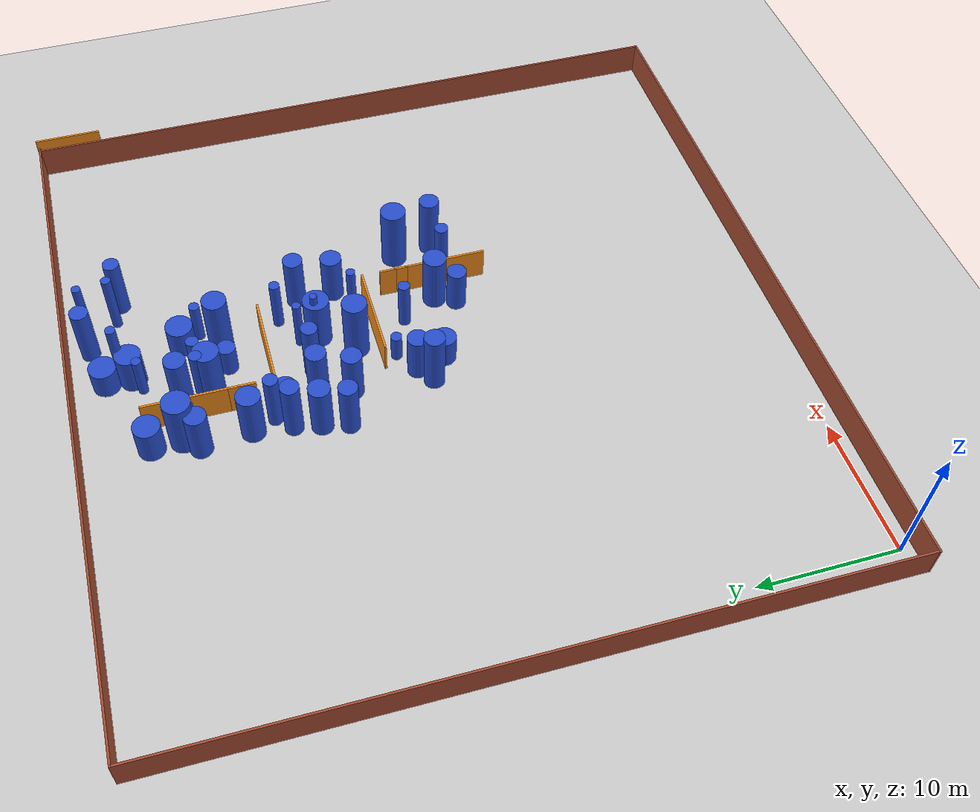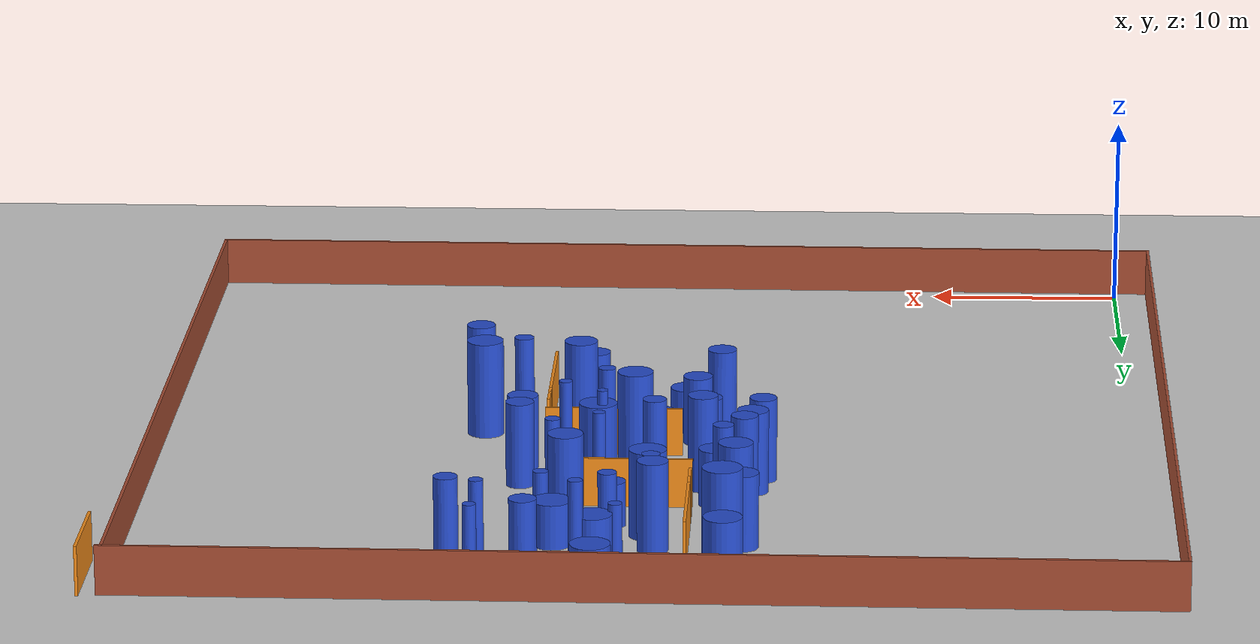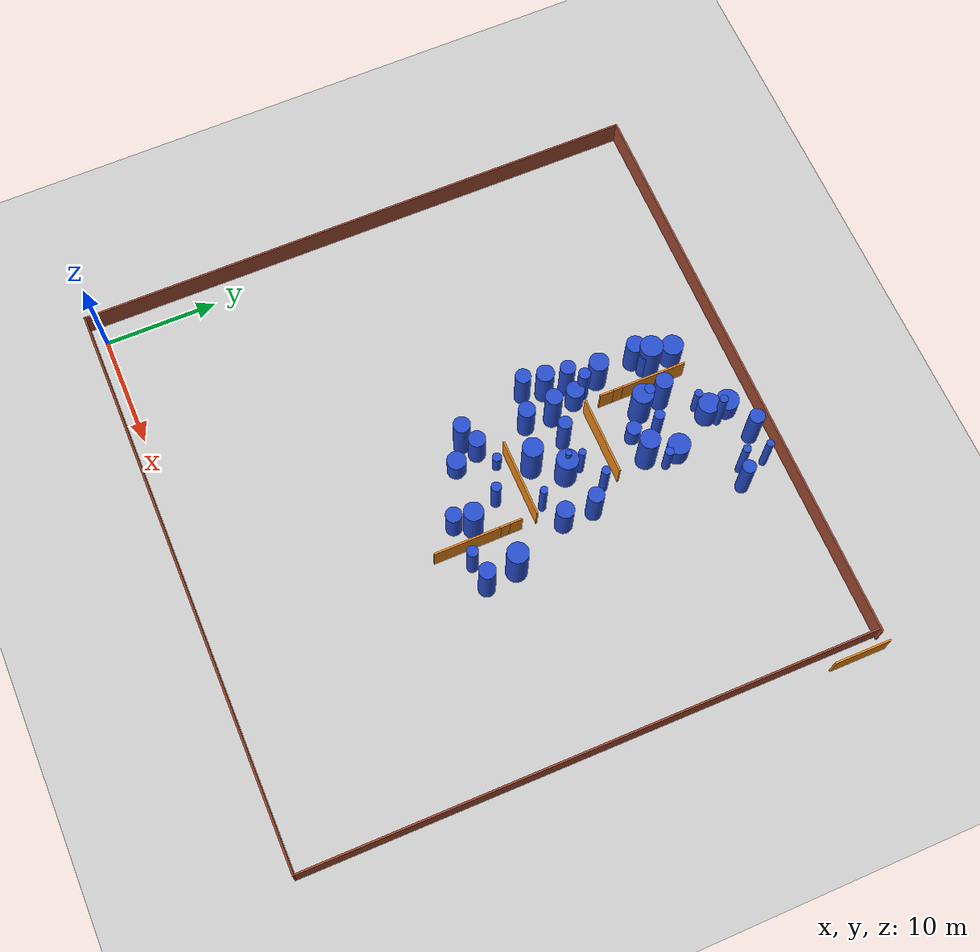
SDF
<sdf version="1.6">
 <world name="default">
  <model name="ground_plane">
   <static>1</static>
   <link name="link">
    <collision name="collision">
     <geometry><plane><normal>0 0 1</normal><size>100 100</size></plane></geometry>
     <surface><friction><ode><mu>100</mu><mu2>50</mu2></ode></friction></surface>
    </collision>
    <visual name="visual">
     <cast_shadows>0</cast_shadows>
     <geometry><plane><normal>0 0 1</normal><size>100 100</size></plane></geometry>
     <material>
      <script><uri>file://media/materials/scripts/gazebo.material</uri><name>Gazebo/Grey</name></script>
     </material>
    </visual>
   </link>
  </model>
  <model name="1">
   <static>0</static>
   <link name="link">
    <inertial>
     <mass>2</mass>
     <inertia><ixx>3.78778</ixx><ixy>0</ixy><ixz>0</ixz><iyy>3.78778</iyy><iyz>0</iyz><izz>0.35692</izz></inertia>
    </inertial>
    <collision name="collision">
     <geometry><cylinder><length>4.65359</length><radius>0.597428</radius></cylinder></geometry>
     <surface><contact><collide_without_contact>1</collide_without_contact></contact></surface>
    </collision>
    <visual name="visual">
     <geometry><cylinder><length>4.65359</length><radius>0.597428</radius></cylinder></geometry>
     <material>
      <script><uri>file://media/materials/scripts/gazebo.material</uri><name>Gazebo/Blue</name></script>
     </material>
    </visual>
    <gravity>0</gravity>
   </link>
   <pose>24.2609 32.8057 2.3268 0 -0 0</pose>
  </model>
  <model name="11">
   <static>0</static>
   <link name="link">
    <inertial>
     <mass>2</mass>
     <inertia><ixx>1.8509</ixx><ixy>0</ixy><ixz>0</ixz><iyy>1.8509</iyy><iyz>0</iyz><izz>0.122377</izz></inertia>
    </inertial>
    <collision name="collision">
     <geometry><cylinder><length>3.27693</length><radius>0.349825</radius></cylinder></geometry>
     <surface><contact><collide_without_contact>1</collide_without_contact></contact></surface>
    </collision>
    <visual name="visual">
     <geometry><cylinder><length>3.27693</length><radius>0.349825</radius></cylinder></geometry>
     <material>
      <script><uri>file://media/materials/scripts/gazebo.material</uri><name>Gazebo/Blue</name></script>
     </material>
    </visual>
    <gravity>0</gravity>
   </link>
   <pose>25.7147 44.6037 1.63846 0 -0 0</pose>
  </model>
  <model name="12">
   <static>0</static>
   <link name="link">
    <inertial>
     <mass>2</mass>
     <inertia><ixx>2.16856</ixx><ixy>0</ixy><ixz>0</ixz><iyy>2.16856</iyy><iyz>0</iyz><izz>0.502649</izz></inertia>
    </inertial>
    <collision name="collision">
     <geometry><cylinder><length>3.39167</length><radius>0.708978</radius></cylinder></geometry>
     <surface><contact><collide_without_contact>1</collide_without_contact></contact></surface>
    </collision>
    <visual name="visual">
     <geometry><cylinder><length>3.39167</length><radius>0.708978</radius></cylinder></geometry>
     <material>
      <script><uri>file://media/materials/scripts/gazebo.material</uri><name>Gazebo/Blue</name></script>
     </material>
    </visual>
    <gravity>0</gravity>
   </link>
   <pose>27.6973 21.2651 1.69583 0 -0 0</pose>
  </model>
  <model name="14">
   <static>0</static>
   <link name="link">
    <inertial>
     <mass>2</mass>
     <inertia><ixx>3.82852</ixx><ixy>0</ixy><ixz>0</ixz><iyy>3.82852</iyy><iyz>0</iyz><izz>0.125875</izz></inertia>
    </inertial>
    <collision name="collision">
     <geometry><cylinder><length>4.75326</length><radius>0.354788</radius></cylinder></geometry>
     <surface><contact><collide_without_contact>1</collide_without_contact></contact></surface>
    </collision>
    <visual name="visual">
     <geometry><cylinder><length>4.75326</length><radius>0.354788</radius></cylinder></geometry>
     <material>
      <script><uri>file://media/materials/scripts/gazebo.material</uri><name>Gazebo/Blue</name></script>
     </material>
    </visual>
    <gravity>0</gravity>
   </link>
   <pose>32.3125 45.6475 2.37663 0 -0 0</pose>
  </model>
  <model name="18">
   <static>0</static>
   <link name="link">
    <inertial>
     <mass>2</mass>
     <inertia>
      <ixx>0.856917</ixx>
      <ixy>0</ixy>
      <ixz>0</ixz>
      <iyy>0.856917</iyy>
      <iyz>0</iyz>
      <izz>0.164802</izz>
     </inertia>
    </inertial>
    <collision name="collision">
     <geometry><cylinder><length>2.15571</length><radius>0.405958</radius></cylinder></geometry>
     <surface><contact><collide_without_contact>1</collide_without_contact></contact></surface>
    </collision>
    <visual name="visual">
     <geometry><cylinder><length>2.15571</length><radius>0.405958</radius></cylinder></geometry>
     <material>
      <script><uri>file://media/materials/scripts/gazebo.material</uri><name>Gazebo/Blue</name></script>
     </material>
    </visual>
    <gravity>0</gravity>
   </link>
   <pose>23.9671 26.7785 1.07786 0 -0 0</pose>
  </model>
  <model name="35">
   <static>0</static>
   <link name="link">
    <inertial>
     <mass>2</mass>
     <inertia><ixx>3.99285</ixx><ixy>0</ixy><ixz>0</ixz><iyy>3.99285</iyy><iyz>0</iyz><izz>0.131146</izz></inertia>
    </inertial>
    <collision name="collision">
     <geometry><cylinder><length>4.85424</length><radius>0.36214</radius></cylinder></geometry>
     <surface><contact><collide_without_contact>1</collide_without_contact></contact></surface>
    </collision>
    <visual name="visual">
     <geometry><cylinder><length>4.85424</length><radius>0.36214</radius></cylinder></geometry>
     <material>
      <script><uri>file://media/materials/scripts/gazebo.material</uri><name>Gazebo/Blue</name></script>
     </material>
    </visual>
    <gravity>0</gravity>
   </link>
   <pose>27.5562 45.8459 2.42712 0 -0 0</pose>
  </model>
  <model name="39">
   <static>0</static>
   <link name="link">
    <inertial>
     <mass>2</mass>
     <inertia><ixx>1.87707</ixx><ixy>0</ixy><ixz>0</ixz><iyy>1.87707</iyy><iyz>0</iyz><izz>0.143575</izz></inertia>
    </inertial>
    <collision name="collision">
     <geometry><cylinder><length>3.29115</length><radius>0.378913</radius></cylinder></geometry>
     <surface><contact><collide_without_contact>1</collide_without_contact></contact></surface>
    </collision>
    <visual name="visual">
     <geometry><cylinder><length>3.29115</length><radius>0.378913</radius></cylinder></geometry>
     <material>
      <script><uri>file://media/materials/scripts/gazebo.material</uri><name>Gazebo/Blue</name></script>
     </material>
    </visual>
    <gravity>0</gravity>
   </link>
   <pose>29.5533 40.0496 1.64558 0 -0 0</pose>
  </model>
  <model name="40">
   <static>0</static>
   <link name="link">
    <inertial>
     <mass>2</mass>
     <inertia><ixx>3.64768</ixx><ixy>0</ixy><ixz>0</ixz><iyy>3.64768</iyy><iyz>0</iyz><izz>0.726786</izz></inertia>
    </inertial>
    <collision name="collision">
     <geometry><cylinder><length>4.43911</length><radius>0.852518</radius></cylinder></geometry>
     <surface><contact><collide_without_contact>1</collide_without_contact></contact></surface>
    </collision>
    <visual name="visual">
     <geometry><cylinder><length>4.43911</length><radius>0.852518</radius></cylinder></geometry>
     <material>
      <script><uri>file://media/materials/scripts/gazebo.material</uri><name>Gazebo/Blue</name></script>
     </material>
    </visual>
    <gravity>0</gravity>
   </link>
   <pose>28.4354 22.7265 2.21956 0 -0 0</pose>
  </model>
  <model name="46">
   <static>0</static>
   <link name="link">
    <inertial>
     <mass>2</mass>
     <inertia><ixx>1.08337</ixx><ixy>0</ixy><ixz>0</ixz><iyy>1.08337</iyy><iyz>0</iyz><izz>0.431223</izz></inertia>
    </inertial>
    <collision name="collision">
     <geometry><cylinder><length>2.28179</length><radius>0.656676</radius></cylinder></geometry>
     <surface><contact><collide_without_contact>1</collide_without_contact></contact></surface>
    </collision>
    <visual name="visual">
     <geometry><cylinder><length>2.28179</length><radius>0.656676</radius></cylinder></geometry>
     <material>
      <script><uri>file://media/materials/scripts/gazebo.material</uri><name>Gazebo/Blue</name></script>
     </material>
    </visual>
    <gravity>0</gravity>
   </link>
   <pose>26.1184 38.4737 1.14089 0 -0 0</pose>
  </model>
  <model name="51">
   <static>0</static>
   <link name="link">
    <inertial>
     <mass>2</mass>
     <inertia><ixx>2.12897</ixx><ixy>0</ixy><ixz>0</ixz><iyy>2.12897</iyy><iyz>0</iyz><izz>0.215485</izz></inertia>
    </inertial>
    <collision name="collision">
     <geometry><cylinder><length>3.48244</length><radius>0.464204</radius></cylinder></geometry>
     <surface><contact><collide_without_contact>1</collide_without_contact></contact></surface>
    </collision>
    <visual name="visual">
     <geometry><cylinder><length>3.48244</length><radius>0.464204</radius></cylinder></geometry>
     <material>
      <script><uri>file://media/materials/scripts/gazebo.material</uri><name>Gazebo/Blue</name></script>
     </material>
    </visual>
    <gravity>0</gravity>
   </link>
   <pose>26.2759 40.6636 1.74122 0 -0 0</pose>
  </model>
  <model name="60">
   <static>0</static>
   <link name="link">
    <inertial>
     <mass>2</mass>
     <inertia><ixx>2.57815</ixx><ixy>0</ixy><ixz>0</ixz><iyy>2.57815</iyy><iyz>0</iyz><izz>0.193232</izz></inertia>
    </inertial>
    <collision name="collision">
     <geometry><cylinder><length>3.85866</length><radius>0.439582</radius></cylinder></geometry>
     <surface><contact><collide_without_contact>1</collide_without_contact></contact></surface>
    </collision>
    <visual name="visual">
     <geometry><cylinder><length>3.85866</length><radius>0.439582</radius></cylinder></geometry>
     <material>
      <script><uri>file://media/materials/scripts/gazebo.material</uri><name>Gazebo/Blue</name></script>
     </material>
    </visual>
    <gravity>0</gravity>
   </link>
   <pose>26.9644 25.3938 1.92933 0 -0 0</pose>
  </model>
  <model name="67">
   <static>0</static>
   <link name="link">
    <inertial>
     <mass>2</mass>
     <inertia><ixx>3.78893</ixx><ixy>0</ixy><ixz>0</ixz><iyy>3.78893</iyy><iyz>0</iyz><izz>0.594463</izz></inertia>
    </inertial>
    <collision name="collision">
     <geometry><cylinder><length>4.57713</length><radius>0.771014</radius></cylinder></geometry>
     <surface><contact><collide_without_contact>1</collide_without_contact></contact></surface>
    </collision>
    <visual name="visual">
     <geometry><cylinder><length>4.57713</length><radius>0.771014</radius></cylinder></geometry>
     <material>
      <script><uri>file://media/materials/scripts/gazebo.material</uri><name>Gazebo/Blue</name></script>
     </material>
    </visual>
    <gravity>0</gravity>
   </link>
   <pose>24.0154 42.051 2.28857 0 -0 0</pose>
  </model>
  <model name="69">
   <static>0</static>
   <link name="link">
    <inertial>
     <mass>2</mass>
     <inertia><ixx>4.29036</ixx><ixy>0</ixy><ixz>0</ixz><iyy>4.29036</iyy><iyz>0</iyz><izz>0.556457</izz></inertia>
    </inertial>
    <collision name="collision">
     <geometry><cylinder><length>4.9064</length><radius>0.74596</radius></cylinder></geometry>
     <surface><contact><collide_without_contact>1</collide_without_contact></contact></surface>
    </collision>
    <visual name="visual">
     <geometry><cylinder><length>4.9064</length><radius>0.74596</radius></cylinder></geometry>
     <material>
      <script><uri>file://media/materials/scripts/gazebo.material</uri><name>Gazebo/Blue</name></script>
     </material>
    </visual>
    <gravity>0</gravity>
   </link>
   <pose>21.8537 32.8622 2.4532 0 -0 0</pose>
  </model>
  <model name="71">
   <static>0</static>
   <link name="link">
    <inertial>
     <mass>2</mass>
     <inertia><ixx>3.39926</ixx><ixy>0</ixy><ixz>0</ixz><iyy>3.39926</iyy><iyz>0</iyz><izz>0.20815</izz></inertia>
    </inertial>
    <collision name="collision">
     <geometry><cylinder><length>4.44647</length><radius>0.456234</radius></cylinder></geometry>
     <surface><contact><collide_without_contact>1</collide_without_contact></contact></surface>
    </collision>
    <visual name="visual">
     <geometry><cylinder><length>4.44647</length><radius>0.456234</radius></cylinder></geometry>
     <material>
      <script><uri>file://media/materials/scripts/gazebo.material</uri><name>Gazebo/Blue</name></script>
     </material>
    </visual>
    <gravity>0</gravity>
   </link>
   <pose>24.1535 40.6533 2.22323 0 -0 0</pose>
  </model>
  <model name="74">
   <static>0</static>
   <link name="link">
    <inertial>
     <mass>2</mass>
     <inertia><ixx>2.79138</ixx><ixy>0</ixy><ixz>0</ixz><iyy>2.79138</iyy><iyz>0</iyz><izz>0.102118</izz></inertia>
    </inertial>
    <collision name="collision">
     <geometry><cylinder><length>4.05487</length><radius>0.319558</radius></cylinder></geometry>
     <surface><contact><collide_without_contact>1</collide_without_contact></contact></surface>
    </collision>
    <visual name="visual">
     <geometry><cylinder><length>4.05487</length><radius>0.319558</radius></cylinder></geometry>
     <material>
      <script><uri>file://media/materials/scripts/gazebo.material</uri><name>Gazebo/Blue</name></script>
     </material>
    </visual>
    <gravity>0</gravity>
   </link>
   <pose>27.024 33.1538 2.02743 0 -0 0</pose>
  </model>
  <model name="81">
   <static>0</static>
   <link name="link">
    <inertial>
     <mass>2</mass>
     <inertia><ixx>3.20515</ixx><ixy>0</ixy><ixz>0</ixz><iyy>3.20515</iyy><iyz>0</iyz><izz>0.736814</izz></inertia>
    </inertial>
    <collision name="collision">
     <geometry><cylinder><length>4.12559</length><radius>0.858379</radius></cylinder></geometry>
     <surface><contact><collide_without_contact>1</collide_without_contact></contact></surface>
    </collision>
    <visual name="visual">
     <geometry><cylinder><length>4.12559</length><radius>0.858379</radius></cylinder></geometry>
     <material>
      <script><uri>file://media/materials/scripts/gazebo.material</uri><name>Gazebo/Blue</name></script>
     </material>
    </visual>
    <gravity>0</gravity>
   </link>
   <pose>20.1003 37.8413 2.06279 0 -0 0</pose>
  </model>
  <model name="82">
   <static>0</static>
   <link name="link">
    <inertial>
     <mass>2</mass>
     <inertia><ixx>3.87551</ixx><ixy>0</ixy><ixz>0</ixz><iyy>3.87551</iyy><iyz>0</iyz><izz>0.350834</izz></inertia>
    </inertial>
    <collision name="collision">
     <geometry><cylinder><length>4.71175</length><radius>0.592312</radius></cylinder></geometry>
     <surface><contact><collide_without_contact>1</collide_without_contact></contact></surface>
    </collision>
    <visual name="visual">
     <geometry><cylinder><length>4.71175</length><radius>0.592312</radius></cylinder></geometry>
     <material>
      <script><uri>file://media/materials/scripts/gazebo.material</uri><name>Gazebo/Blue</name></script>
     </material>
    </visual>
    <gravity>0</gravity>
   </link>
   <pose>33.8019 45.1243 2.35587 0 -0 0</pose>
  </model>
  <model name="87">
   <static>0</static>
   <link name="link">
    <inertial>
     <mass>2</mass>
     <inertia><ixx>3.09626</ixx><ixy>0</ixy><ixz>0</ixz><iyy>3.09626</iyy><iyz>0</iyz><izz>0.107735</izz></inertia>
    </inertial>
    <collision name="collision">
     <geometry><cylinder><length>4.27251</length><radius>0.32823</radius></cylinder></geometry>
     <surface><contact><collide_without_contact>1</collide_without_contact></contact></surface>
    </collision>
    <visual name="visual">
     <geometry><cylinder><length>4.27251</length><radius>0.32823</radius></cylinder></geometry>
     <material>
      <script><uri>file://media/materials/scripts/gazebo.material</uri><name>Gazebo/Blue</name></script>
     </material>
    </visual>
    <gravity>0</gravity>
   </link>
   <pose>32.4923 47.7909 2.13626 0 -0 0</pose>
  </model>
  <model name="89">
   <static>0</static>
   <link name="link">
    <inertial>
     <mass>2</mass>
     <inertia><ixx>2.83176</ixx><ixy>0</ixy><ixz>0</ixz><iyy>2.83176</iyy><iyz>0</iyz><izz>0.149114</izz></inertia>
    </inertial>
    <collision name="collision">
     <geometry><cylinder><length>4.06733</length><radius>0.386152</radius></cylinder></geometry>
     <surface><contact><collide_without_contact>1</collide_without_contact></contact></surface>
    </collision>
    <visual name="visual">
     <geometry><cylinder><length>4.06733</length><radius>0.386152</radius></cylinder></geometry>
     <material>
      <script><uri>file://media/materials/scripts/gazebo.material</uri><name>Gazebo/Blue</name></script>
     </material>
    </visual>
    <gravity>0</gravity>
   </link>
   <pose>29.2793 34.287 2.03367 0 -0 0</pose>
  </model>
  <model name="91">
   <static>0</static>
   <link name="link">
    <inertial>
     <mass>2</mass>
     <inertia><ixx>2.71113</ixx><ixy>0</ixy><ixz>0</ixz><iyy>2.71113</iyy><iyz>0</iyz><izz>0.613025</izz></inertia>
    </inertial>
    <collision name="collision">
     <geometry><cylinder><length>3.79838</length><radius>0.782959</radius></cylinder></geometry>
     <surface><contact><collide_without_contact>1</collide_without_contact></contact></surface>
    </collision>
    <visual name="visual">
     <geometry><cylinder><length>3.79838</length><radius>0.782959</radius></cylinder></geometry>
     <material>
      <script><uri>file://media/materials/scripts/gazebo.material</uri><name>Gazebo/Blue</name></script>
     </material>
    </visual>
    <gravity>0</gravity>
   </link>
   <pose>31.0269 29.8249 1.89919 0 -0 0</pose>
  </model>
  <model name="103">
   <static>0</static>
   <link name="link">
    <inertial>
     <mass>2</mass>
     <inertia><ixx>1.67193</ixx><ixy>0</ixy><ixz>0</ixz><iyy>1.67193</iyy><iyz>0</iyz><izz>0.920377</izz></inertia>
    </inertial>
    <collision name="collision">
     <geometry><cylinder><length>2.69637</length><radius>0.959363</radius></cylinder></geometry>
     <surface><contact><collide_without_contact>1</collide_without_contact></contact></surface>
    </collision>
    <visual name="visual">
     <geometry><cylinder><length>2.69637</length><radius>0.959363</radius></cylinder></geometry>
     <material>
      <script><uri>file://media/materials/scripts/gazebo.material</uri><name>Gazebo/Blue</name></script>
     </material>
    </visual>
    <gravity>0</gravity>
   </link>
   <pose>20.5546 44.7036 1.34819 0 -0 0</pose>
  </model>
  <model name="133">
   <static>0</static>
   <link name="link">
    <inertial>
     <mass>2</mass>
     <inertia><ixx>3.4341</ixx><ixy>0</ixy><ixz>0</ixz><iyy>3.4341</iyy><iyz>0</iyz><izz>0.510052</izz></inertia>
    </inertial>
    <collision name="collision">
     <geometry><cylinder><length>4.36743</length><radius>0.714179</radius></cylinder></geometry>
     <surface><contact><collide_without_contact>1</collide_without_contact></contact></surface>
    </collision>
    <visual name="visual">
     <geometry><cylinder><length>4.36743</length><radius>0.714179</radius></cylinder></geometry>
     <material>
      <script><uri>file://media/materials/scripts/gazebo.material</uri><name>Gazebo/Blue</name></script>
     </material>
    </visual>
    <gravity>0</gravity>
   </link>
   <pose>31.014 32.5884 2.18371 0 -0 0</pose>
  </model>
  <model name="135">
   <static>0</static>
   <link name="link">
    <inertial>
     <mass>2</mass>
     <inertia><ixx>3.2239</ixx><ixy>0</ixy><ixz>0</ixz><iyy>3.2239</iyy><iyz>0</iyz><izz>0.913912</izz></inertia>
    </inertial>
    <collision name="collision">
     <geometry><cylinder><length>4.07451</length><radius>0.955988</radius></cylinder></geometry>
     <surface><contact><collide_without_contact>1</collide_without_contact></contact></surface>
    </collision>
    <visual name="visual">
     <geometry><cylinder><length>4.07451</length><radius>0.955988</radius></cylinder></geometry>
     <material>
      <script><uri>file://media/materials/scripts/gazebo.material</uri><name>Gazebo/Blue</name></script>
     </material>
    </visual>
    <gravity>0</gravity>
   </link>
   <pose>27.1253 31.7575 2.03726 0 -0 0</pose>
  </model>
  <model name="137">
   <static>0</static>
   <link name="link">
    <inertial>
     <mass>2</mass>
     <inertia><ixx>3.36348</ixx><ixy>0</ixy><ixz>0</ixz><iyy>3.36348</iyy><iyz>0</iyz><izz>0.618252</izz></inertia>
    </inertial>
    <collision name="collision">
     <geometry><cylinder><length>4.2809</length><radius>0.78629</radius></cylinder></geometry>
     <surface><contact><collide_without_contact>1</collide_without_contact></contact></surface>
    </collision>
    <visual name="visual">
     <geometry><cylinder><length>4.2809</length><radius>0.78629</radius></cylinder></geometry>
     <material>
      <script><uri>file://media/materials/scripts/gazebo.material</uri><name>Gazebo/Blue</name></script>
     </material>
    </visual>
    <gravity>0</gravity>
   </link>
   <pose>19.3556 33.2046 2.14045 0 -0 0</pose>
  </model>
  <model name="146">
   <static>0</static>
   <link name="link">
    <inertial>
     <mass>2</mass>
     <inertia><ixx>4.58001</ixx><ixy>0</ixy><ixz>0</ixz><iyy>4.58001</iyy><iyz>0</iyz><izz>0.876721</izz></inertia>
    </inertial>
    <collision name="collision">
     <geometry><cylinder><length>4.98497</length><radius>0.936334</radius></cylinder></geometry>
     <surface><contact><collide_without_contact>1</collide_without_contact></contact></surface>
    </collision>
    <visual name="visual">
     <geometry><cylinder><length>4.98497</length><radius>0.936334</radius></cylinder></geometry>
     <material>
      <script><uri>file://media/materials/scripts/gazebo.material</uri><name>Gazebo/Blue</name></script>
     </material>
    </visual>
    <gravity>0</gravity>
   </link>
   <pose>33.2621 24.5478 2.49248 0 -0 0</pose>
  </model>
  <model name="147">
   <static>0</static>
   <link name="link">
    <inertial>
     <mass>2</mass>
     <inertia><ixx>3.49009</ixx><ixy>0</ixy><ixz>0</ixz><iyy>3.49009</iyy><iyz>0</iyz><izz>0.274124</izz></inertia>
    </inertial>
    <collision name="collision">
     <geometry><cylinder><length>4.48533</length><radius>0.523568</radius></cylinder></geometry>
     <surface><contact><collide_without_contact>1</collide_without_contact></contact></surface>
    </collision>
    <visual name="visual">
     <geometry><cylinder><length>4.48533</length><radius>0.523568</radius></cylinder></geometry>
     <material>
      <script><uri>file://media/materials/scripts/gazebo.material</uri><name>Gazebo/Blue</name></script>
     </material>
    </visual>
    <gravity>0</gravity>
   </link>
   <pose>20.7487 36.1869 2.24266 0 -0 0</pose>
  </model>
  <model name="152">
   <static>0</static>
   <link name="link">
    <inertial>
     <mass>2</mass>
     <inertia><ixx>1.20059</ixx><ixy>0</ixy><ixz>0</ixz><iyy>1.20059</iyy><iyz>0</iyz><izz>0.971857</izz></inertia>
    </inertial>
    <collision name="collision">
     <geometry><cylinder><length>2.07074</length><radius>0.985828</radius></cylinder></geometry>
     <surface><contact><collide_without_contact>1</collide_without_contact></contact></surface>
    </collision>
    <visual name="visual">
     <geometry><cylinder><length>2.07074</length><radius>0.985828</radius></cylinder></geometry>
     <material>
      <script><uri>file://media/materials/scripts/gazebo.material</uri><name>Gazebo/Blue</name></script>
     </material>
    </visual>
    <gravity>0</gravity>
   </link>
   <pose>26.8155 47.0067 1.03537 0 -0 0</pose>
  </model>
  <model name="163">
   <static>0</static>
   <link name="link">
    <inertial>
     <mass>2</mass>
     <inertia><ixx>4.16915</ixx><ixy>0</ixy><ixz>0</ixz><iyy>4.16915</iyy><iyz>0</iyz><izz>0.775676</izz></inertia>
    </inertial>
    <collision name="collision">
     <geometry><cylinder><length>4.76318</length><radius>0.880725</radius></cylinder></geometry>
     <surface><contact><collide_without_contact>1</collide_without_contact></contact></surface>
    </collision>
    <visual name="visual">
     <geometry><cylinder><length>4.76318</length><radius>0.880725</radius></cylinder></geometry>
     <material>
      <script><uri>file://media/materials/scripts/gazebo.material</uri><name>Gazebo/Blue</name></script>
     </material>
    </visual>
    <gravity>0</gravity>
   </link>
   <pose>28.4074 38.6486 2.38159 0 -0 0</pose>
  </model>
  <model name="164">
   <static>0</static>
   <link name="link">
    <inertial>
     <mass>2</mass>
     <inertia><ixx>1.85473</ixx><ixy>0</ixy><ixz>0</ixz><iyy>1.85473</iyy><iyz>0</iyz><izz>0.892902</izz></inertia>
    </inertial>
    <collision name="collision">
     <geometry><cylinder><length>2.90684</length><radius>0.944935</radius></cylinder></geometry>
     <surface><contact><collide_without_contact>1</collide_without_contact></contact></surface>
    </collision>
    <visual name="visual">
     <geometry><cylinder><length>2.90684</length><radius>0.944935</radius></cylinder></geometry>
     <material>
      <script><uri>file://media/materials/scripts/gazebo.material</uri><name>Gazebo/Blue</name></script>
     </material>
    </visual>
    <gravity>0</gravity>
   </link>
   <pose>26.7698 45.1486 1.45342 0 -0 0</pose>
  </model>
  <model name="167">
   <static>0</static>
   <link name="link">
    <inertial>
     <mass>2</mass>
     <inertia><ixx>1.34492</ixx><ixy>0</ixy><ixz>0</ixz><iyy>1.34492</iyy><iyz>0</iyz><izz>0.970128</izz></inertia>
    </inertial>
    <collision name="collision">
     <geometry><cylinder><length>2.27138</length><radius>0.984951</radius></cylinder></geometry>
     <surface><contact><collide_without_contact>1</collide_without_contact></contact></surface>
    </collision>
    <visual name="visual">
     <geometry><cylinder><length>2.27138</length><radius>0.984951</radius></cylinder></geometry>
     <material>
      <script><uri>file://media/materials/scripts/gazebo.material</uri><name>Gazebo/Blue</name></script>
     </material>
    </visual>
    <gravity>0</gravity>
   </link>
   <pose>28.9333 41.3694 1.13569 0 -0 0</pose>
  </model>
  <model name="170">
   <static>0</static>
   <link name="link">
    <inertial>
     <mass>2</mass>
     <inertia><ixx>3.00671</ixx><ixy>0</ixy><ixz>0</ixz><iyy>3.00671</iyy><iyz>0</iyz><izz>0.251425</izz></inertia>
    </inertial>
    <collision name="collision">
     <geometry><cylinder><length>4.15764</length><radius>0.501423</radius></cylinder></geometry>
     <surface><contact><collide_without_contact>1</collide_without_contact></contact></surface>
    </collision>
    <visual name="visual">
     <geometry><cylinder><length>4.15764</length><radius>0.501423</radius></cylinder></geometry>
     <material>
      <script><uri>file://media/materials/scripts/gazebo.material</uri><name>Gazebo/Blue</name></script>
     </material>
    </visual>
    <gravity>0</gravity>
   </link>
   <pose>31.4526 21.3588 2.07882 0 -0 0</pose>
  </model>
  <model name="191">
   <static>0</static>
   <link name="link">
    <inertial>
     <mass>2</mass>
     <inertia><ixx>3.06221</ixx><ixy>0</ixy><ixz>0</ixz><iyy>3.06221</iyy><iyz>0</iyz><izz>0.112457</izz></inertia>
    </inertial>
    <collision name="collision">
     <geometry><cylinder><length>4.24687</length><radius>0.335345</radius></cylinder></geometry>
     <surface><contact><collide_without_contact>1</collide_without_contact></contact></surface>
    </collision>
    <visual name="visual">
     <geometry><cylinder><length>4.24687</length><radius>0.335345</radius></cylinder></geometry>
     <material>
      <script><uri>file://media/materials/scripts/gazebo.material</uri><name>Gazebo/Blue</name></script>
     </material>
    </visual>
    <gravity>0</gravity>
   </link>
   <pose>28.9089 28.8132 2.12343 0 -0 0</pose>
  </model>
  <model name="193">
   <static>0</static>
   <link name="link">
    <inertial>
     <mass>2</mass>
     <inertia><ixx>1.20079</ixx><ixy>0</ixy><ixz>0</ixz><iyy>1.20079</iyy><iyz>0</iyz><izz>0.702629</izz></inertia>
    </inertial>
    <collision name="collision">
     <geometry><cylinder><length>2.25762</length><radius>0.83823</radius></cylinder></geometry>
     <surface><contact><collide_without_contact>1</collide_without_contact></contact></surface>
    </collision>
    <visual name="visual">
     <geometry><cylinder><length>2.25762</length><radius>0.83823</radius></cylinder></geometry>
     <material>
      <script><uri>file://media/materials/scripts/gazebo.material</uri><name>Gazebo/Blue</name></script>
     </material>
    </visual>
    <gravity>0</gravity>
   </link>
   <pose>22.9462 23.519 1.12881 0 -0 0</pose>
  </model>
  <model name="194">
   <static>0</static>
   <link name="link">
    <inertial>
     <mass>2</mass>
     <inertia><ixx>2.39795</ixx><ixy>0</ixy><ixz>0</ixz><iyy>2.39795</iyy><iyz>0</iyz><izz>0.563044</izz></inertia>
    </inertial>
    <collision name="collision">
     <geometry><cylinder><length>3.5635</length><radius>0.750363</radius></cylinder></geometry>
     <surface><contact><collide_without_contact>1</collide_without_contact></contact></surface>
    </collision>
    <visual name="visual">
     <geometry><cylinder><length>3.5635</length><radius>0.750363</radius></cylinder></geometry>
     <material>
      <script><uri>file://media/materials/scripts/gazebo.material</uri><name>Gazebo/Blue</name></script>
     </material>
    </visual>
    <gravity>0</gravity>
   </link>
   <pose>22.3131 25.657 1.78175 0 -0 0</pose>
  </model>
  <model name="198">
   <static>0</static>
   <link name="link">
    <inertial>
     <mass>2</mass>
     <inertia><ixx>3.71387</ixx><ixy>0</ixy><ixz>0</ixz><iyy>3.71387</iyy><iyz>0</iyz><izz>0.447245</izz></inertia>
    </inertial>
    <collision name="collision">
     <geometry><cylinder><length>4.57619</length><radius>0.668764</radius></cylinder></geometry>
     <surface><contact><collide_without_contact>1</collide_without_contact></contact></surface>
    </collision>
    <visual name="visual">
     <geometry><cylinder><length>4.57619</length><radius>0.668764</radius></cylinder></geometry>
     <material>
      <script><uri>file://media/materials/scripts/gazebo.material</uri><name>Gazebo/Blue</name></script>
     </material>
    </visual>
    <gravity>0</gravity>
   </link>
   <pose>29.9535 47.7903 2.28809 0 -0 0</pose>
  </model>
  <model name="201">
   <static>0</static>
   <link name="link">
    <inertial>
     <mass>2</mass>
     <inertia><ixx>4.50665</ixx><ixy>0</ixy><ixz>0</ixz><iyy>4.50665</iyy><iyz>0</iyz><izz>0.813506</izz></inertia>
    </inertial>
    <collision name="collision">
     <geometry><cylinder><length>4.95977</length><radius>0.901946</radius></cylinder></geometry>
     <surface><contact><collide_without_contact>1</collide_without_contact></contact></surface>
    </collision>
    <visual name="visual">
     <geometry><cylinder><length>4.95977</length><radius>0.901946</radius></cylinder></geometry>
     <material>
      <script><uri>file://media/materials/scripts/gazebo.material</uri><name>Gazebo/Blue</name></script>
     </material>
    </visual>
    <gravity>0</gravity>
   </link>
   <pose>25.3569 29.3603 2.47989 0 -0 0</pose>
  </model>
  <model name="203">
   <static>0</static>
   <link name="link">
    <inertial>
     <mass>2</mass>
     <inertia><ixx>4.30953</ixx><ixy>0</ixy><ixz>0</ixz><iyy>4.30953</iyy><iyz>0</iyz><izz>0.540901</izz></inertia>
    </inertial>
    <collision name="collision">
     <geometry><cylinder><length>4.92285</length><radius>0.73546</radius></cylinder></geometry>
     <surface><contact><collide_without_contact>1</collide_without_contact></contact></surface>
    </collision>
    <visual name="visual">
     <geometry><cylinder><length>4.92285</length><radius>0.73546</radius></cylinder></geometry>
     <material>
      <script><uri>file://media/materials/scripts/gazebo.material</uri><name>Gazebo/Blue</name></script>
     </material>
    </visual>
    <gravity>0</gravity>
   </link>
   <pose>33.6597 21.699 2.46143 0 -0 0</pose>
  </model>
  <model name="206">
   <static>0</static>
   <link name="link">
    <inertial>
     <mass>2</mass>
     <inertia><ixx>3.72014</ixx><ixy>0</ixy><ixz>0</ixz><iyy>3.72014</iyy><iyz>0</iyz><izz>0.869376</izz></inertia>
    </inertial>
    <collision name="collision">
     <geometry><cylinder><length>4.4399</length><radius>0.932403</radius></cylinder></geometry>
     <surface><contact><collide_without_contact>1</collide_without_contact></contact></surface>
    </collision>
    <visual name="visual">
     <geometry><cylinder><length>4.4399</length><radius>0.932403</radius></cylinder></geometry>
     <material>
      <script><uri>file://media/materials/scripts/gazebo.material</uri><name>Gazebo/Blue</name></script>
     </material>
    </visual>
    <gravity>0</gravity>
   </link>
   <pose>24.3304 39.9397 2.21995 0 -0 0</pose>
  </model>
  <model name="209">
   <static>0</static>
   <link name="link">
    <inertial>
     <mass>2</mass>
     <inertia><ixx>3.79171</ixx><ixy>0</ixy><ixz>0</ixz><iyy>3.79171</iyy><iyz>0</iyz><izz>0.451853</izz></inertia>
    </inertial>
    <collision name="collision">
     <geometry><cylinder><length>4.62544</length><radius>0.6722</radius></cylinder></geometry>
     <surface><contact><collide_without_contact>1</collide_without_contact></contact></surface>
    </collision>
    <visual name="visual">
     <geometry><cylinder><length>4.62544</length><radius>0.6722</radius></cylinder></geometry>
     <material>
      <script><uri>file://media/materials/scripts/gazebo.material</uri><name>Gazebo/Blue</name></script>
     </material>
    </visual>
    <gravity>0</gravity>
   </link>
   <pose>19.725 35.0983 2.31272 0 -0 0</pose>
  </model>
  <model name="210">
   <static>0</static>
   <link name="link">
    <inertial>
     <mass>2</mass>
     <inertia><ixx>2.96356</ixx><ixy>0</ixy><ixz>0</ixz><iyy>2.96356</iyy><iyz>0</iyz><izz>0.550999</izz></inertia>
    </inertial>
    <collision name="collision">
     <geometry><cylinder><length>4.01601</length><radius>0.742293</radius></cylinder></geometry>
     <surface><contact><collide_without_contact>1</collide_without_contact></contact></surface>
    </collision>
    <visual name="visual">
     <geometry><cylinder><length>4.01601</length><radius>0.742293</radius></cylinder></geometry>
     <material>
      <script><uri>file://media/materials/scripts/gazebo.material</uri><name>Gazebo/Blue</name></script>
     </material>
    </visual>
    <gravity>0</gravity>
   </link>
   <pose>21.6794 30.479 2.00801 0 -0 0</pose>
  </model>
  <model name="222">
   <static>0</static>
   <link name="link">
    <inertial>
     <mass>2</mass>
     <inertia><ixx>2.31859</ixx><ixy>0</ixy><ixz>0</ixz><iyy>2.31859</iyy><iyz>0</iyz><izz>0.314104</izz></inertia>
    </inertial>
    <collision name="collision">
     <geometry><cylinder><length>3.60128</length><radius>0.56045</radius></cylinder></geometry>
     <surface><contact><collide_without_contact>1</collide_without_contact></contact></surface>
    </collision>
    <visual name="visual">
     <geometry><cylinder><length>3.60128</length><radius>0.56045</radius></cylinder></geometry>
     <material>
      <script><uri>file://media/materials/scripts/gazebo.material</uri><name>Gazebo/Blue</name></script>
     </material>
    </visual>
    <gravity>0</gravity>
   </link>
   <pose>20.78 41.979 1.80064 0 -0 0</pose>
  </model>
  <model name="223">
   <static>0</static>
   <link name="link">
    <inertial>
     <mass>2</mass>
     <inertia><ixx>4.01343</ixx><ixy>0</ixy><ixz>0</ixz><iyy>4.01343</iyy><iyz>0</iyz><izz>0.5544</izz></inertia>
    </inertial>
    <collision name="collision">
     <geometry><cylinder><length>4.7347</length><radius>0.74458</radius></cylinder></geometry>
     <surface><contact><collide_without_contact>1</collide_without_contact></contact></surface>
    </collision>
    <visual name="visual">
     <geometry><cylinder><length>4.7347</length><radius>0.74458</radius></cylinder></geometry>
     <material>
      <script><uri>file://media/materials/scripts/gazebo.material</uri><name>Gazebo/Blue</name></script>
     </material>
    </visual>
    <gravity>0</gravity>
   </link>
   <pose>21.094 24.7907 2.36735 0 -0 0</pose>
  </model>
  <model name="225">
   <static>0</static>
   <link name="link">
    <inertial>
     <mass>2</mass>
     <inertia><ixx>3.35615</ixx><ixy>0</ixy><ixz>0</ixz><iyy>3.35615</iyy><iyz>0</iyz><izz>0.473322</izz></inertia>
    </inertial>
    <collision name="collision">
     <geometry><cylinder><length>4.32631</length><radius>0.687984</radius></cylinder></geometry>
     <surface><contact><collide_without_contact>1</collide_without_contact></contact></surface>
    </collision>
    <visual name="visual">
     <geometry><cylinder><length>4.32631</length><radius>0.687984</radius></cylinder></geometry>
     <material>
      <script><uri>file://media/materials/scripts/gazebo.material</uri><name>Gazebo/Blue</name></script>
     </material>
    </visual>
    <gravity>0</gravity>
   </link>
   <pose>18.8712 31.3583 2.16315 0 -0 0</pose>
  </model>
  <model name="228">
   <static>0</static>
   <link name="link">
    <inertial>
     <mass>2</mass>
     <inertia><ixx>1.73638</ixx><ixy>0</ixy><ixz>0</ixz><iyy>1.73638</iyy><iyz>0</iyz><izz>0.623905</izz></inertia>
    </inertial>
    <collision name="collision">
     <geometry><cylinder><length>2.92345</length><radius>0.789877</radius></cylinder></geometry>
     <surface><contact><collide_without_contact>1</collide_without_contact></contact></surface>
    </collision>
    <visual name="visual">
     <geometry><cylinder><length>2.92345</length><radius>0.789877</radius></cylinder></geometry>
     <material>
      <script><uri>file://media/materials/scripts/gazebo.material</uri><name>Gazebo/Blue</name></script>
     </material>
    </visual>
    <gravity>0</gravity>
   </link>
   <pose>21.2095 35.2223 1.46173 0 -0 0</pose>
  </model>
  <model name="232">
   <static>0</static>
   <link name="link">
    <inertial>
     <mass>2</mass>
     <inertia><ixx>2.75627</ixx><ixy>0</ixy><ixz>0</ixz><iyy>2.75627</iyy><iyz>0</iyz><izz>0.631356</izz></inertia>
    </inertial>
    <collision name="collision">
     <geometry><cylinder><length>3.82669</length><radius>0.794579</radius></cylinder></geometry>
     <surface><contact><collide_without_contact>1</collide_without_contact></contact></surface>
    </collision>
    <visual name="visual">
     <geometry><cylinder><length>3.82669</length><radius>0.794579</radius></cylinder></geometry>
     <material>
      <script><uri>file://media/materials/scripts/gazebo.material</uri><name>Gazebo/Blue</name></script>
     </material>
    </visual>
    <gravity>0</gravity>
   </link>
   <pose>19.6793 41.4712 1.91335 0 -0 0</pose>
  </model>
  <model name="237">
   <static>0</static>
   <link name="link">
    <inertial>
     <mass>2</mass>
     <inertia><ixx>3.88565</ixx><ixy>0</ixy><ixz>0</ixz><iyy>3.88565</iyy><iyz>0</iyz><izz>0.069964</izz></inertia>
    </inertial>
    <collision name="collision">
     <geometry><cylinder><length>4.80666</length><radius>0.264507</radius></cylinder></geometry>
     <surface><contact><collide_without_contact>1</collide_without_contact></contact></surface>
    </collision>
    <visual name="visual">
     <geometry><cylinder><length>4.80666</length><radius>0.264507</radius></cylinder></geometry>
     <material>
      <script><uri>file://media/materials/scripts/gazebo.material</uri><name>Gazebo/Blue</name></script>
     </material>
    </visual>
    <gravity>0</gravity>
   </link>
   <pose>26.8976 31.9292 2.40333 0 -0 0</pose>
  </model>
  <model name="239">
   <static>0</static>
   <link name="link">
    <inertial>
     <mass>2</mass>
     <inertia><ixx>3.76016</ixx><ixy>0</ixy><ixz>0</ixz><iyy>3.76016</iyy><iyz>0</iyz><izz>0.986349</izz></inertia>
    </inertial>
    <collision name="collision">
     <geometry><cylinder><length>4.42741</length><radius>0.993151</radius></cylinder></geometry>
     <surface><contact><collide_without_contact>1</collide_without_contact></contact></surface>
    </collision>
    <visual name="visual">
     <geometry><cylinder><length>4.42741</length><radius>0.993151</radius></cylinder></geometry>
     <material>
      <script><uri>file://media/materials/scripts/gazebo.material</uri><name>Gazebo/Blue</name></script>
     </material>
    </visual>
    <gravity>0</gravity>
   </link>
   <pose>20.6365 42.4807 2.2137 0 -0 0</pose>
  </model>
  <model name="wall_0_clone_1">
   <pose>26.515 23.2003 0 0 -0 0</pose>
   <link name="Wall_10">
    <collision name="Wall_10_Collision">
     <geometry><box><size>1 0.15 2.5</size></box></geometry>
     <pose>0 0 1.25 0 -0 0</pose>
    </collision>
    <visual name="Wall_10_Visual">
     <pose>0 0 1.25 0 -0 0</pose>
     <geometry><box><size>1 0.15 2.5</size></box></geometry>
     <material>
      <script><uri>file://media/materials/scripts/gazebo.material</uri><name>Gazebo/Orange</name></script>
      <ambient>1 1 1 1</ambient>
     </material>
     <meta><layer>0</layer></meta>
    </visual>
    <pose>3.41104 1.67587 0 0 -0 -1.5708</pose>
   </link>
   <link name="Wall_11">
    <collision name="Wall_11_Collision">
     <geometry><box><size>6 0.15 2.5</size></box></geometry>
     <pose>0 0 1.25 0 -0 0</pose>
    </collision>
    <visual name="Wall_11_Visual">
     <pose>0 0 1.25 0 -0 0</pose>
     <geometry><box><size>6 0.15 2.5</size></box></geometry>
     <material>
      <script><uri>file://media/materials/scripts/gazebo.material</uri><name>Gazebo/Orange</name></script>
      <ambient>1 1 1 1</ambient>
     </material>
     <meta><layer>0</layer></meta>
    </visual>
    <pose>3.41104 -1.67413 0 0 -0 -1.5708</pose>
   </link>
   <link name="Wall_6">
    <collision name="Wall_6_Collision">
     <geometry><box><size>7 0.15 2.5</size></box></geometry>
     <pose>0 0 1.25 0 -0 0</pose>
    </collision>
    <visual name="Wall_6_Visual">
     <pose>0 0 1.25 0 -0 0</pose>
     <geometry><box><size>7 0.15 2.5</size></box></geometry>
     <material>
      <script><uri>file://media/materials/scripts/gazebo.material</uri><name>Gazebo/Orange</name></script>
      <ambient>1 1 1 1</ambient>
     </material>
     <meta><layer>0</layer></meta>
    </visual>
    <pose>-0 4.59914 0 0 -0 0</pose>
   </link>
   <link name="Wall_9">
    <collision name="Wall_9_Collision">
     <geometry><box><size>1.25 0.15 2.5</size></box></geometry>
     <pose>0 0 1.25 0 -0 0</pose>
    </collision>
    <visual name="Wall_9_Visual">
     <pose>0 0 1.25 0 -0 0</pose>
     <geometry><box><size>1.25 0.15 2.5</size></box></geometry>
     <material>
      <script><uri>file://media/materials/scripts/gazebo.material</uri><name>Gazebo/Orange</name></script>
      <ambient>1 1 1 1</ambient>
     </material>
     <meta><layer>0</layer></meta>
    </visual>
    <pose>3.41104 2.65087 0 0 -0 -1.5708</pose>
   </link>
   <static>1</static>
  </model>
  <model name="wall_0_clone_7">
   <pose>25.7807 40.292 0 0 -0 3.13838</pose>
   <link name="Wall_10">
    <collision name="Wall_10_Collision">
     <geometry><box><size>1 0.15 2.5</size></box></geometry>
     <pose>0 0 1.25 0 -0 0</pose>
    </collision>
    <visual name="Wall_10_Visual">
     <pose>0 0 1.25 0 -0 0</pose>
     <geometry><box><size>1 0.15 2.5</size></box></geometry>
     <material>
      <script><uri>file://media/materials/scripts/gazebo.material</uri><name>Gazebo/Orange</name></script>
      <ambient>1 1 1 1</ambient>
     </material>
     <meta><layer>0</layer></meta>
    </visual>
    <pose>3.41104 1.67587 0 0 -0 -1.5708</pose>
   </link>
   <link name="Wall_11">
    <collision name="Wall_11_Collision">
     <geometry><box><size>6 0.15 2.5</size></box></geometry>
     <pose>0 0 1.25 0 -0 0</pose>
    </collision>
    <visual name="Wall_11_Visual">
     <pose>0 0 1.25 0 -0 0</pose>
     <geometry><box><size>6 0.15 2.5</size></box></geometry>
     <material>
      <script><uri>file://media/materials/scripts/gazebo.material</uri><name>Gazebo/Orange</name></script>
      <ambient>1 1 1 1</ambient>
     </material>
     <meta><layer>0</layer></meta>
    </visual>
    <pose>3.41104 -1.67413 0 0 -0 -1.5708</pose>
   </link>
   <link name="Wall_6">
    <collision name="Wall_6_Collision">
     <geometry><box><size>7 0.15 2.5</size></box></geometry>
     <pose>0 0 1.25 0 -0 0</pose>
    </collision>
    <visual name="Wall_6_Visual">
     <pose>0 0 1.25 0 -0 0</pose>
     <geometry><box><size>7 0.15 2.5</size></box></geometry>
     <material>
      <script><uri>file://media/materials/scripts/gazebo.material</uri><name>Gazebo/Orange</name></script>
      <ambient>1 1 1 1</ambient>
     </material>
     <meta><layer>0</layer></meta>
    </visual>
    <pose>-0 4.59914 0 0 -0 0</pose>
   </link>
   <link name="Wall_9">
    <collision name="Wall_9_Collision">
     <geometry><box><size>1.25 0.15 2.5</size></box></geometry>
     <pose>0 0 1.25 0 -0 0</pose>
    </collision>
    <visual name="Wall_9_Visual">
     <pose>0 0 1.25 0 -0 0</pose>
     <geometry><box><size>1.25 0.15 2.5</size></box></geometry>
     <material>
      <script><uri>file://media/materials/scripts/gazebo.material</uri><name>Gazebo/Orange</name></script>
      <ambient>1 1 1 1</ambient>
     </material>
     <meta><layer>0</layer></meta>
    </visual>
    <pose>3.41104 2.65087 0 0 -0 -1.5708</pose>
   </link>
   <static>1</static>
  </model>
  <model name="wall100">
   <pose>24.6093 24.2451 0 0 -0 3.13562</pose>
   <link name="Wall_0">
    <collision name="Wall_0_Collision">
     <geometry><box><size>5 0.15 2.5</size></box></geometry>
     <pose>0 0 1.25 0 -0 0</pose>
    </collision>
    <visual name="Wall_0_Visual">
     <pose>0 0 1.25 0 -0 0</pose>
     <geometry><box><size>5 0.15 2.5</size></box></geometry>
     <material>
      <script><uri>file://media/materials/scripts/gazebo.material</uri><name>Gazebo/Orange</name></script>
      <ambient>1 1 1 1</ambient>
     </material>
     <meta><layer>0</layer></meta>
    </visual>
    <pose>-26.272 -22.9632 0 0 -0 1.5708</pose>
   </link>
   <link name="Wall_3">
    <collision name="Wall_3_Collision">
     <geometry><box><size>51.75 0.15 2.5</size></box></geometry>
     <pose>0 0 1.25 0 -0 0</pose>
    </collision>
    <visual name="Wall_3_Visual">
     <pose>0 0 1.25 0 -0 0</pose>
     <geometry><box><size>51.75 0.15 2.5</size></box></geometry>
     <material>
      <script><uri>file://media/materials/scripts/gazebo.material</uri><name>Gazebo/Bricks</name></script>
      <ambient>0.760784 0.662745 0.627451 1</ambient>
     </material>
     <meta><layer>0</layer></meta>
    </visual>
    <pose>0.472015 -25.2118 0 0 -0 0</pose>
   </link>
   <link name="Wall_4">
    <collision name="Wall_4_Collision">
     <geometry><box><size>50.75 0.15 2.5</size></box></geometry>
     <pose>0 0 1.25 0 -0 0</pose>
    </collision>
    <visual name="Wall_4_Visual">
     <pose>0 0 1.25 0 -0 0</pose>
     <geometry><box><size>50.75 0.15 2.5</size></box></geometry>
     <material>
      <script><uri>file://media/materials/scripts/gazebo.material</uri><name>Gazebo/Bricks</name></script>
      <ambient>0.760784 0.662745 0.627451 1</ambient>
     </material>
     <meta><layer>0</layer></meta>
    </visual>
    <pose>26.272 0.088238 0 0 -0 1.5708</pose>
   </link>
   <link name="Wall_5">
    <collision name="Wall_5_Collision">
     <geometry><box><size>51.5 0.15 2.5</size></box></geometry>
     <pose>0 0 1.25 0 -0 0</pose>
    </collision>
    <visual name="Wall_5_Visual">
     <pose>0 0 1.25 0 -0 0</pose>
     <geometry><box><size>51.5 0.15 2.5</size></box></geometry>
     <material>
      <script><uri>file://media/materials/scripts/gazebo.material</uri><name>Gazebo/Bricks</name></script>
      <ambient>0.760784 0.662745 0.627451 1</ambient>
     </material>
     <meta><layer>0</layer></meta>
    </visual>
    <pose>0.597015 25.3882 0 0 -0 3.14159</pose>
   </link>
   <link name="Wall_6">
    <collision name="Wall_6_Collision">
     <geometry><box><size>50.75 0.15 2.5</size></box></geometry>
     <pose>0 0 1.25 0 -0 0</pose>
    </collision>
    <visual name="Wall_6_Visual">
     <pose>0 0 1.25 0 -0 0</pose>
     <geometry><box><size>50.75 0.15 2.5</size></box></geometry>
     <material>
      <script><uri>file://media/materials/scripts/gazebo.material</uri><name>Gazebo/Bricks</name></script>
      <ambient>0.996078 0.47451 0.0196078 1</ambient>
     </material>
     <meta><layer>0</layer></meta>
    </visual>
    <pose>-25.078 0.088238 0 0 -0 -1.5708</pose>
   </link>
   <static>1</static>
  </model>
 </world>
</sdf>
